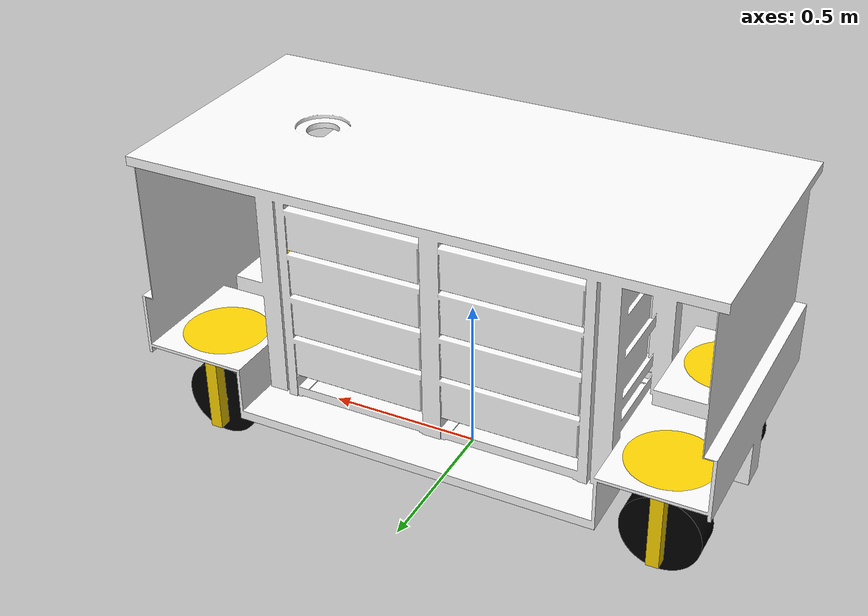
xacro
<?xml version="1.0" ?>
<robot xmlns:xacro="http://www.ros.org/wiki/xacro">

<xacro:include filename="$(find thanxe_new_description)/urdf/materials.xacro" />

<xacro:include filename="$(find thanxe_new_description)/urdf/thanxe_new.gazebo" />
<xacro:include filename="$(find thanxe_new_description)/urdf/inertial_macros.xacro" />
<xacro:include filename="$(find thanxe_new_description)/urdf/ros2_control.xacro" />

<link name="base_footprint">
</link>

<joint name="base_footprint_joint" type="fixed">
    <parent link="base_footprint"/>
    <child link="base_link"/>
    <origin xyz="0 0 0" rpy="0 0 0"/>
</joint>

<link name="base_link">
  <xacro:inertial_box mass = "150" x="1.800" y="0.85" z="1.0">
    <origin xyz="0 0 0.35" rpy="0 0 0"/>
  </xacro:inertial_box>
  <visual>
    <origin xyz="0 0 0" rpy="0 0 0"/>
    <geometry>
      <mesh filename="file://$(find thanxe_new_description)/meshes/base_link.stl" scale="0.001 0.001 0.001"/>
    </geometry>
    <material name="white"/>
  </visual>
  <collision>
    <origin xyz="0 0 0.45" rpy="0 0 0"/>
    <geometry>
      <box size="1.8 0.85 0.15"/>
    </geometry>
  </collision>
</link>

<link name="Revolute1_1">
  <xacro:inertial_box mass="3.0" x="0.135" y="0.135" z="0.31">
    <origin xyz="0 0 -0.17" rpy="0 0 0"/>
  </xacro:inertial_box>

  <visual>
    <origin xyz="-0.738 -0.255 -0.355" rpy="0 0 0"/>
    <geometry>
      <mesh filename="file://$(find thanxe_new_description)/meshes/Revolute1_1.stl" scale="0.001 0.001 0.001"/>
    </geometry>
    <material name="gold"/>
  </visual>
  <collision>
    <origin xyz="-0.738 -0.255 -0.355" rpy="0 0 0"/>
    <geometry>
      <mesh filename="file://$(find thanxe_new_description)/meshes/Revolute1_1.stl" scale="0.001 0.001 0.001"/>
    </geometry>
  </collision>
</link>

<link name="Revolute2_1">
  <xacro:inertial_box mass="3.0" x="0.135" y="0.135" z="0.31">
    <origin xyz="0 0 -0.17" rpy="0 0 0"/>
  </xacro:inertial_box>

  <visual>
    <origin xyz="-0.738 0.255 -0.355" rpy="0 0 0"/>
    <geometry>
      <mesh filename="file://$(find thanxe_new_description)/meshes/Revolute2_1.stl" scale="0.001 0.001 0.001"/>
    </geometry>
    <material name="gold"/>
  </visual>
  <collision>
    <origin xyz="-0.738 0.255 -0.355" rpy="0 0 0"/>
    <geometry>
      <mesh filename="file://$(find thanxe_new_description)/meshes/Revolute2_1.stl" scale="0.001 0.001 0.001"/>
    </geometry>
  </collision>
</link>

<link name="Revolute3_1">
  <xacro:inertial_box mass="3.0" x="0.135" y="0.135" z="0.31">
    <origin xyz="0 0 -0.17" rpy="0 0 0"/>
  </xacro:inertial_box>

  <visual>
    <origin xyz="0.738 -0.255 -0.355" rpy="0 0 0"/>
    <geometry>
      <mesh filename="file://$(find thanxe_new_description)/meshes/Revolute3_1.stl" scale="0.001 0.001 0.001"/>
    </geometry>
    <material name="gold"/>
  </visual>
  <collision>
    <origin xyz="0.738 -0.255 -0.355" rpy="0 0 0"/>
    <geometry>
      <mesh filename="file://$(find thanxe_new_description)/meshes/Revolute3_1.stl" scale="0.001 0.001 0.001"/>
    </geometry>
  </collision>
</link>

<link name="Revolute4_1">
  <xacro:inertial_box mass="3.0" x="0.135" y="0.135" z="0.31">
    <origin xyz="0 0 -0.17" rpy="0 0 0"/>
  </xacro:inertial_box>

  <visual>
    <origin xyz="0.738 0.255 -0.355" rpy="0 0 0"/>
    <geometry>
      <mesh filename="file://$(find thanxe_new_description)/meshes/Revolute4_1.stl" scale="0.001 0.001 0.001"/>
    </geometry>
    <material name="gold"/>
  </visual>
  <collision>
    <origin xyz="0.738 0.255 -0.355" rpy="0 0 0"/>
    <geometry>
      <mesh filename="file://$(find thanxe_new_description)/meshes/Revolute4_1.stl" scale="0.001 0.001 0.001"/>
    </geometry>
  </collision>
</link>
<link name="Wheel1_1">
  <xacro:inertial_cylinder mass="15.0" length="0.05" radius="0.125" >
    <origin xyz="0 0 0" rpy="1.57 0 0"/>
  </xacro:inertial_cylinder>
  <visual>
    <origin xyz="-0.738 -0.255 -0.125" rpy="0 0 0"/>
    <geometry>
      <mesh filename="file://$(find thanxe_new_description)/meshes/Wheel1_1.stl" scale="0.001 0.001 0.001"/>
    </geometry>
    <material name="black"/>
  </visual>
  <collision>
    <origin xyz="-0.738 -0.255 -0.125" rpy="0 0 0"/>
    <geometry>
      <mesh filename="file://$(find thanxe_new_description)/meshes/Wheel1_1.stl" scale="0.001 0.001 0.001"/>
    </geometry>
  </collision>
</link>
<link name="Wheel2_1">
  <xacro:inertial_cylinder mass="15.0" length="0.05" radius="0.125" >
    <origin xyz="0 0 0" rpy="1.57 0 0"/>
  </xacro:inertial_cylinder>
  <visual>
    <origin xyz="-0.738 0.255 -0.125" rpy="0 0 0"/>
    <geometry>
      <mesh filename="file://$(find thanxe_new_description)/meshes/Wheel2_1.stl" scale="0.001 0.001 0.001"/>
    </geometry>
    <material name="black"/>
  </visual>
  <collision>
    <origin xyz="-0.738 0.255 -0.125" rpy="0 0 0"/>
    <geometry>
      <mesh filename="file://$(find thanxe_new_description)/meshes/Wheel2_1.stl" scale="0.001 0.001 0.001"/>
    </geometry>
  </collision>
</link>
<link name="Wheel3_1">
  <xacro:inertial_cylinder mass="15.0" length="0.05" radius="0.125" >
    <origin xyz="0 0 0" rpy="1.57 0 0"/>
  </xacro:inertial_cylinder>
  <visual>
    <origin xyz="0.738 -0.255 -0.125" rpy="0 0 0"/>
    <geometry>
      <mesh filename="file://$(find thanxe_new_description)/meshes/Wheel3_1.stl" scale="0.001 0.001 0.001"/>
    </geometry>
    <material name="black"/>
  </visual>
  <collision>
    <origin xyz="0.738 -0.255 -0.125" rpy="0 0 0"/>
    <geometry>
      <mesh filename="file://$(find thanxe_new_description)/meshes/Wheel3_1.stl" scale="0.001 0.001 0.001"/>
    </geometry>
  </collision>
</link>

<link name="Wheel4_1">
  <xacro:inertial_cylinder mass="15.0" length="0.05" radius="0.125" >
    <origin xyz="0 0 0" rpy="1.57 0 0"/>
  </xacro:inertial_cylinder>

  <visual>
    <origin xyz="0.738 0.255 -0.125" rpy="0 0 0"/>
    <geometry>
      <mesh filename="file://$(find thanxe_new_description)/meshes/Wheel4_1.stl" scale="0.001 0.001 0.001"/>
    </geometry>
    <material name="black"/>
  </visual>
  <collision>
    <origin xyz="0.738 0.255 -0.125" rpy="0 0 0"/>
    <geometry>
      <mesh filename="file://$(find thanxe_new_description)/meshes/Wheel4_1.stl" scale="0.001 0.001 0.001"/>
    </geometry>
  </collision>
</link>

<joint name="Revolute1_to_base_link" type="continuous">
  <origin xyz="0.738 0.255 0.355" rpy="0 0 0"/>
  <parent link="base_link"/>
  <child link="Revolute1_1"/>
  <axis xyz="0.0 -0.0 1.0"/>
  <limit effort="10000" velocity="30.0"/>
</joint>

<joint name="Revolute2_to_base_link" type="continuous">
  <origin xyz="0.738 -0.255 0.355" rpy="0 0 0"/>
  <parent link="base_link"/>
  <child link="Revolute2_1"/>
  <axis xyz="0.0 -0.0 1.0"/>
  <limit effort="10000" velocity="30.0"/>
</joint>

<joint name="Revolute3_to_base_link" type="continuous">
  <origin xyz="-0.738 0.255 0.355" rpy="0 0 0"/>
  <parent link="base_link"/>
  <child link="Revolute3_1"/>
  <axis xyz="0.0 -0.0 1.0"/>
  <limit effort="10000" velocity="30.0"/>
</joint>

<joint name="Revolute4_to_base_link" type="continuous">
  <origin xyz="-0.738 -0.255 0.355" rpy="0 0 0"/>
  <parent link="base_link"/>
  <child link="Revolute4_1"/>
  <axis xyz="0.0 -0.0 1.0"/>
  <limit effort="10000" velocity="30.0"/>
</joint>

<joint name="Wheel1_to_Revolute1" type="continuous">
  <origin xyz="0.0 0.0 -0.23" rpy="0 0 0"/>
  <parent link="Revolute1_1"/>
  <child link="Wheel1_1"/>
  <axis xyz="0.0 1.0 0.0"/>
  <limit effort="10000" velocity="30.0"/>
</joint>

<joint name="Wheel2_to_Revolute2" type="continuous">
  <origin xyz="0.0 0.0 -0.23" rpy="0 0 0"/>
  <parent link="Revolute2_1"/>
  <child link="Wheel2_1"/>
  <axis xyz="0.0 1.0 0.0"/>
  <limit effort="10000" velocity="30.0"/>
</joint>

<joint name="Wheel3_to_Revolute3" type="continuous">
  <origin xyz="0.0 0.0 -0.23" rpy="0 0 0"/>
  <parent link="Revolute3_1"/>
  <child link="Wheel3_1"/>
  <axis xyz="0.0 1.0 0.0"/>
  <limit effort="10000" velocity="30.0"/>
</joint>

<joint name="Wheel4_to_Revolute4" type="continuous">
  <origin xyz="0.0 0.0 -0.23" rpy="0 0 0"/>
  <parent link="Revolute4_1"/>
  <child link="Wheel4_1"/>
  <axis xyz="0.0 1.0 0.0"/>
  <limit effort="10000" velocity="30.0"/>
</joint>

</robot>

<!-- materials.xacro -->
<robot xmlns:xacro="http://www.ros.org/wiki/xacro" >

<material name="silver">
  <color rgba="0.700 0.700 0.700 1.000"/>
</material>

<material name="white">
  <color rgba="1.0 1.0 1.0 1.0"/>
</material>

<material name="black">
  <color rgba="0.0 0.0 0.0 1.0"/>
</material>

<material name="dark_grey">
  <color rgba="0.2 0.2 0.2 1.0"/>
</material>

<material name="steel">
  <color rgba="0.5 0.5 0.5 1.0"/>
</material>

<material name="gold">
  <color rgba="1.0 0.84 0.0 1.0"/>
</material>

<material name="orange">
  <color rgba="1.0 0.42 0.04 1.0"/>
</material>

<material name="blue">
  <color rgba="0.0 0.0 0.8 1.0"/>
</material>

<material name="midnight_blue">
  <color rgba="0.1 0.1 0.4 1.0"/>
</material>

<material name="red">
  <color rgba="0.8 0.0 0.0 1.0"/>
</material>

</robot>

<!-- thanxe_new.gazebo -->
<robot xmlns:xacro="http://www.ros.org/wiki/xacro" >

<xacro:property name="body_color" value="Gazebo/Silver" />

<gazebo reference="base_link">
  <material>${body_color}</material>
  <mu1>0.2</mu1>
  <mu2>0.2</mu2>
  <self_collide>false</self_collide>
  <gravity>true</gravity>
  <linearDamping>5.0</linearDamping>
  <angularDamping>5.0</angularDamping>
</gazebo>

<gazebo reference="Revolute1_1">
  <material>${body_color}</material>
  <mu1>0.2</mu1>
  <mu2>0.2</mu2>
  <self_collide>false</self_collide>
</gazebo>

<gazebo reference="Revolute2_1">
  <material>${body_color}</material>
  <mu1>0.2</mu1>
  <mu2>0.2</mu2>
  <self_collide>false</self_collide>
</gazebo>

<gazebo reference="Revolute3_1">
  <material>${body_color}</material>
  <mu1>0.2</mu1>
  <mu2>0.2</mu2>
  <self_collide>false</self_collide>
</gazebo>

<gazebo reference="Revolute4_1">
  <material>${body_color}</material>
  <mu1>0.2</mu1>
  <mu2>0.2</mu2>
  <self_collide>false</self_collide>
</gazebo>

<gazebo reference="Wheel1_1">
  <material>${body_color}</material>
  <mu1>1.0</mu1>
  <mu2>0.2</mu2>
  <kp>1000000</kp>
  <kd>20</kd>
  <minDepth>0.001</minDepth>
  <maxVel>0.5</maxVel>
  <fdir1>1 0 0</fdir1>
  </gazebo>

<gazebo reference="Wheel2_1">
  <material>${body_color}</material>
  <mu1>1.0</mu1>
  <mu2>0.2</mu2>
  <kp>1000000</kp>
  <kd>20</kd>
  <minDepth>0.001</minDepth>
  <maxVel>0.5</maxVel>
  <fdir1>1 0 0</fdir1>
</gazebo>

<gazebo reference="Wheel3_1">
  <material>${body_color}</material>
  <mu1>1.0</mu1>
  <mu2>0.2</mu2>
  <kp>1000000</kp>
  <kd>20</kd>
  <minDepth>0.001</minDepth>
  <maxVel>0.5</maxVel>
  <fdir1>1 0 0</fdir1>
</gazebo>

<gazebo reference="Wheel4_1">
  <material>${body_color}</material>
  <mu1>1.0</mu1>
  <mu2>0.2</mu2>
  <kp>10000000.0</kp>
  <kd>20.0</kd>
  <minDepth>0.001</minDepth>
  <maxVel>0.5</maxVel>
  <fdir1>1 0 0</fdir1>
</gazebo>

<gazebo reference="base_link">
    <material>Gazebo/White</material>
</gazebo>

<gazebo reference="Revolute1_1">
    <material>Gazebo/Gold</material>
</gazebo>
<gazebo reference="Revolute2_1">
    <material>Gazebo/Gold</material>
</gazebo>
<gazebo reference="Revolute3_1">
    <material>Gazebo/Gold</material>
</gazebo>
<gazebo reference="Revolute4_1">
    <material>Gazebo/Gold</material>
</gazebo>

<gazebo reference="Wheel1_1">
    <material>Gazebo/Black</material>
</gazebo>
<gazebo reference="Wheel2_1">
    <material>Gazebo/Black</material>
</gazebo>
<gazebo reference="Wheel3_1">
    <material>Gazebo/Black</material>
</gazebo>
<gazebo reference="Wheel4_1">
    <material>Gazebo/Black</material>
</gazebo>

<gazebo reference="Charge_link">
    <material>Gazebo/Gold</material>
</gazebo>

<gazebo reference="camera_link">
    <material>Gazebo/Red</material>
</gazebo>

<gazebo reference="shoulder_link">
      <material>Gazebo/Grey</material>
  </gazebo>

  <gazebo reference="upper_arm_link">
      <material>Gazebo/Grey</material> </gazebo>

  <gazebo reference="forearm_link">
      <material>Gazebo/Grey</material>
  </gazebo>

  <gazebo reference="wrist_1_link">
      <material>Gazebo/Blue</material>
  </gazebo>

  <gazebo reference="wrist_2_link">
      <material>Gazebo/Grey</material>
  </gazebo>

  <gazebo reference="wrist_3_link">
      <material>Gazebo/Grey</material>
  </gazebo>

  <gazebo reference="tool0">
      <material>Gazebo/Red</material>
  </gazebo>

</robot>
